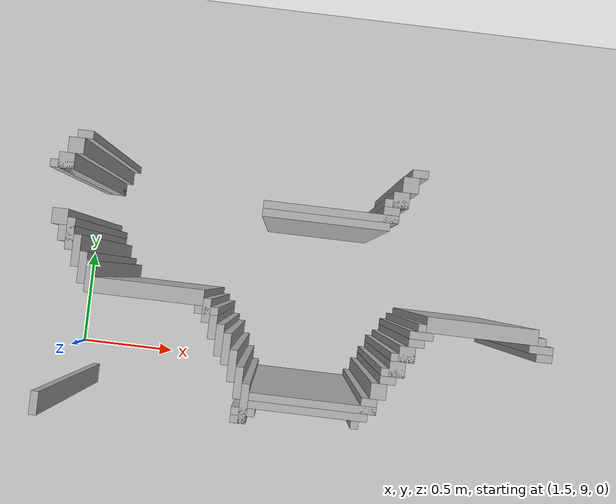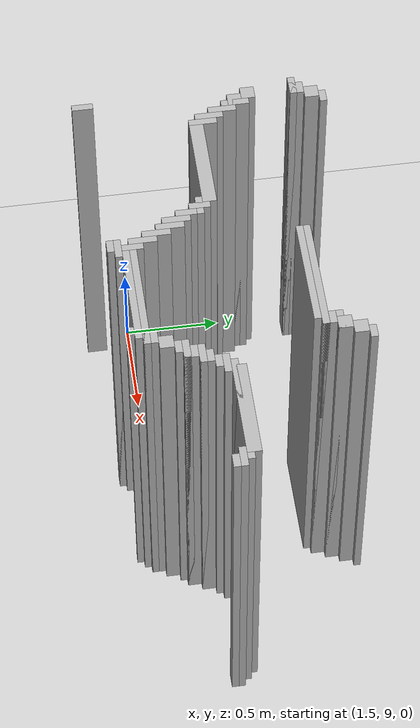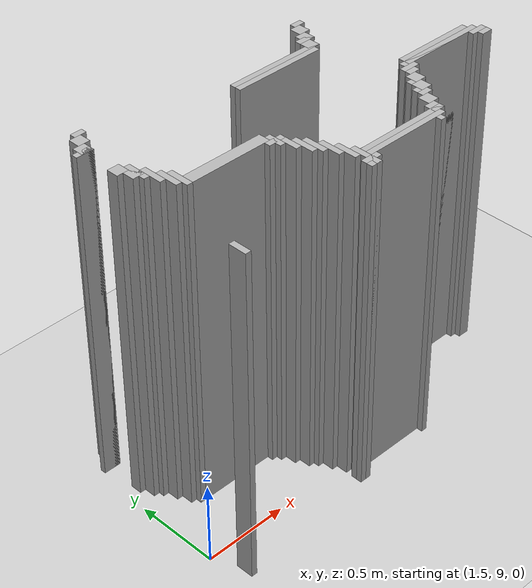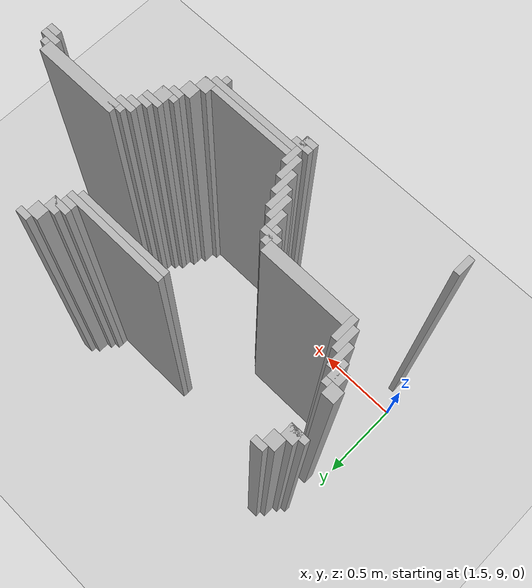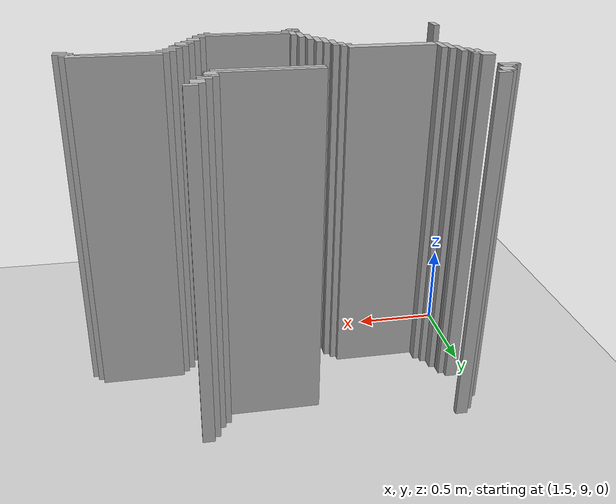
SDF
<sdf version="1.6">
 <world name="slam_world">
  <model name="ground_plane">
   <static>true</static>
   <link name="link">
    <collision name="collision">
     <geometry><plane><normal>0 0 1</normal><size>100 100</size></plane></geometry>
    </collision>
    <visual name="visual">
     <geometry><plane><normal>0 0 1</normal><size>100 100</size></plane></geometry>
     <material>
      <ambient>0.8 0.8 0.8 1</ambient>
      <diffuse>0.8 0.8 0.8 1</diffuse>
      <specular>0.8 0.8 0.8 1</specular>
     </material>
    </visual>
   </link>
  </model>
  <model name="wall_2462">
   <static>true</static>
   <pose>1.6705336426914152 10.005800464037122 1.0 0 0 0</pose>
   <link name="link">
    <collision name="collision">
     <geometry><box><size>0.06960556844547564 0.03480278422273782 2.0</size></box></geometry>
    </collision>
    <visual name="visual">
     <geometry><box><size>0.06960556844547564 0.03480278422273782 2.0</size></box></geometry>
     <material><ambient>0.5 0.5 0.5 1</ambient><diffuse>0.7 0.7 0.7 1</diffuse></material>
    </visual>
   </link>
  </model>
  <model name="wall_2463">
   <static>true</static>
   <pose>3.1322505800464038 10.005800464037122 1.0 0 0 0</pose>
   <link name="link">
    <collision name="collision">
     <geometry><box><size>0.06960556844547564 0.03480278422273782 2.0</size></box></geometry>
    </collision>
    <visual name="visual">
     <geometry><box><size>0.06960556844547564 0.03480278422273782 2.0</size></box></geometry>
     <material><ambient>0.5 0.5 0.5 1</ambient><diffuse>0.7 0.7 0.7 1</diffuse></material>
    </visual>
   </link>
  </model>
  <model name="wall_2471">
   <static>true</static>
   <pose>1.6357308584686774 9.953596287703016 1.0 0 0 0</pose>
   <link name="link">
    <collision name="collision">
     <geometry><box><size>0.06960556844547564 0.06960556844547564 2.0</size></box></geometry>
    </collision>
    <visual name="visual">
     <geometry><box><size>0.06960556844547564 0.06960556844547564 2.0</size></box></geometry>
     <material><ambient>0.5 0.5 0.5 1</ambient><diffuse>0.7 0.7 0.7 1</diffuse></material>
    </visual>
   </link>
  </model>
  <model name="wall_2472">
   <static>true</static>
   <pose>3.097447795823666 9.953596287703016 1.0 0 0 0</pose>
   <link name="link">
    <collision name="collision">
     <geometry><box><size>0.06960556844547564 0.06960556844547564 2.0</size></box></geometry>
    </collision>
    <visual name="visual">
     <geometry><box><size>0.06960556844547564 0.06960556844547564 2.0</size></box></geometry>
     <material><ambient>0.5 0.5 0.5 1</ambient><diffuse>0.7 0.7 0.7 1</diffuse></material>
    </visual>
   </link>
  </model>
  <model name="wall_2485">
   <static>true</static>
   <pose>1.6009280742459395 9.88399071925754 1.0 0 0 0</pose>
   <link name="link">
    <collision name="collision">
     <geometry><box><size>0.06960556844547564 0.06960556844547564 2.0</size></box></geometry>
    </collision>
    <visual name="visual">
     <geometry><box><size>0.06960556844547564 0.06960556844547564 2.0</size></box></geometry>
     <material><ambient>0.5 0.5 0.5 1</ambient><diffuse>0.7 0.7 0.7 1</diffuse></material>
    </visual>
   </link>
  </model>
  <model name="wall_2486">
   <static>true</static>
   <pose>3.062645011600928 9.88399071925754 1.0 0 0 0</pose>
   <link name="link">
    <collision name="collision">
     <geometry><box><size>0.06960556844547564 0.06960556844547564 2.0</size></box></geometry>
    </collision>
    <visual name="visual">
     <geometry><box><size>0.06960556844547564 0.06960556844547564 2.0</size></box></geometry>
     <material><ambient>0.5 0.5 0.5 1</ambient><diffuse>0.7 0.7 0.7 1</diffuse></material>
    </visual>
   </link>
  </model>
  <model name="wall_2499">
   <static>true</static>
   <pose>1.5835266821345706 9.86658932714617 1.0 0 0 0</pose>
   <link name="link">
    <collision name="collision">
     <geometry><box><size>0.10440835266821345 0.03480278422273782 2.0</size></box></geometry>
    </collision>
    <visual name="visual">
     <geometry><box><size>0.10440835266821345 0.03480278422273782 2.0</size></box></geometry>
     <material><ambient>0.5 0.5 0.5 1</ambient><diffuse>0.7 0.7 0.7 1</diffuse></material>
    </visual>
   </link>
  </model>
  <model name="wall_2500">
   <static>true</static>
   <pose>3.045243619489559 9.86658932714617 1.0 0 0 0</pose>
   <link name="link">
    <collision name="collision">
     <geometry><box><size>0.10440835266821345 0.03480278422273782 2.0</size></box></geometry>
    </collision>
    <visual name="visual">
     <geometry><box><size>0.10440835266821345 0.03480278422273782 2.0</size></box></geometry>
     <material><ambient>0.5 0.5 0.5 1</ambient><diffuse>0.7 0.7 0.7 1</diffuse></material>
    </visual>
   </link>
  </model>
  <model name="wall_2513">
   <static>true</static>
   <pose>3.02784222737819 9.814385150812065 1.0 0 0 0</pose>
   <link name="link">
    <collision name="collision">
     <geometry><box><size>0.06960556844547564 0.06960556844547564 2.0</size></box></geometry>
    </collision>
    <visual name="visual">
     <geometry><box><size>0.06960556844547564 0.06960556844547564 2.0</size></box></geometry>
     <material><ambient>0.5 0.5 0.5 1</ambient><diffuse>0.7 0.7 0.7 1</diffuse></material>
    </visual>
   </link>
  </model>
  <model name="wall_2522">
   <static>true</static>
   <pose>2.7668213457076565 9.796983758700696 1.0 0 0 0</pose>
   <link name="link">
    <collision name="collision">
     <geometry><box><size>0.5916473317865429 0.03480278422273782 2.0</size></box></geometry>
    </collision>
    <visual name="visual">
     <geometry><box><size>0.5916473317865429 0.03480278422273782 2.0</size></box></geometry>
     <material><ambient>0.5 0.5 0.5 1</ambient><diffuse>0.7 0.7 0.7 1</diffuse></material>
    </visual>
   </link>
  </model>
  <model name="wall_2535">
   <static>true</static>
   <pose>2.7494199535962878 9.762180974477959 1.0 0 0 0</pose>
   <link name="link">
    <collision name="collision">
     <geometry><box><size>0.5568445475638051 0.03480278422273782 2.0</size></box></geometry>
    </collision>
    <visual name="visual">
     <geometry><box><size>0.5568445475638051 0.03480278422273782 2.0</size></box></geometry>
     <material><ambient>0.5 0.5 0.5 1</ambient><diffuse>0.7 0.7 0.7 1</diffuse></material>
    </visual>
   </link>
  </model>
  <model name="wall_2559">
   <static>true</static>
   <pose>1.6009280742459395 9.640371229698376 1.0 0 0 0</pose>
   <link name="link">
    <collision name="collision">
     <geometry><box><size>0.06960556844547564 0.06960556844547564 2.0</size></box></geometry>
    </collision>
    <visual name="visual">
     <geometry><box><size>0.06960556844547564 0.06960556844547564 2.0</size></box></geometry>
     <material><ambient>0.5 0.5 0.5 1</ambient><diffuse>0.7 0.7 0.7 1</diffuse></material>
    </visual>
   </link>
  </model>
  <model name="wall_2570">
   <static>true</static>
   <pose>1.6531322505800463 9.5707656612529 1.0 0 0 0</pose>
   <link name="link">
    <collision name="collision">
     <geometry><box><size>0.03480278422273782 0.13921113689095127 2.0</size></box></geometry>
    </collision>
    <visual name="visual">
     <geometry><box><size>0.03480278422273782 0.13921113689095127 2.0</size></box></geometry>
     <material><ambient>0.5 0.5 0.5 1</ambient><diffuse>0.7 0.7 0.7 1</diffuse></material>
    </visual>
   </link>
  </model>
  <model name="wall_2581">
   <static>true</static>
   <pose>1.6357308584686774 9.5707656612529 1.0 0 0 0</pose>
   <link name="link">
    <collision name="collision">
     <geometry><box><size>0.06960556844547564 0.06960556844547564 2.0</size></box></geometry>
    </collision>
    <visual name="visual">
     <geometry><box><size>0.06960556844547564 0.06960556844547564 2.0</size></box></geometry>
     <material><ambient>0.5 0.5 0.5 1</ambient><diffuse>0.7 0.7 0.7 1</diffuse></material>
    </visual>
   </link>
  </model>
  <model name="wall_2592">
   <static>true</static>
   <pose>1.6879350348027842 9.501160092807424 1.0 0 0 0</pose>
   <link name="link">
    <collision name="collision">
     <geometry><box><size>0.03480278422273782 0.13921113689095127 2.0</size></box></geometry>
    </collision>
    <visual name="visual">
     <geometry><box><size>0.03480278422273782 0.13921113689095127 2.0</size></box></geometry>
     <material><ambient>0.5 0.5 0.5 1</ambient><diffuse>0.7 0.7 0.7 1</diffuse></material>
    </visual>
   </link>
  </model>
  <model name="wall_2607">
   <static>true</static>
   <pose>1.722737819025522 9.431554524361948 1.0 0 0 0</pose>
   <link name="link">
    <collision name="collision">
     <geometry><box><size>0.03480278422273782 0.13921113689095127 2.0</size></box></geometry>
    </collision>
    <visual name="visual">
     <geometry><box><size>0.03480278422273782 0.13921113689095127 2.0</size></box></geometry>
     <material><ambient>0.5 0.5 0.5 1</ambient><diffuse>0.7 0.7 0.7 1</diffuse></material>
    </visual>
   </link>
  </model>
  <model name="wall_2618">
   <static>true</static>
   <pose>1.75754060324826 9.39675174013921 1.0 0 0 0</pose>
   <link name="link">
    <collision name="collision">
     <geometry><box><size>0.03480278422273782 0.13921113689095127 2.0</size></box></geometry>
    </collision>
    <visual name="visual">
     <geometry><box><size>0.03480278422273782 0.13921113689095127 2.0</size></box></geometry>
     <material><ambient>0.5 0.5 0.5 1</ambient><diffuse>0.7 0.7 0.7 1</diffuse></material>
    </visual>
   </link>
  </model>
  <model name="wall_2633">
   <static>true</static>
   <pose>2.0185614849187936 9.361948955916473 1.0 0 0 0</pose>
   <link name="link">
    <collision name="collision">
     <geometry><box><size>0.4872389791183295 0.06960556844547564 2.0</size></box></geometry>
    </collision>
    <visual name="visual">
     <geometry><box><size>0.4872389791183295 0.06960556844547564 2.0</size></box></geometry>
     <material><ambient>0.5 0.5 0.5 1</ambient><diffuse>0.7 0.7 0.7 1</diffuse></material>
    </visual>
   </link>
  </model>
  <model name="wall_2634">
   <static>true</static>
   <pose>3.480278422273782 9.361948955916473 1.0 0 0 0</pose>
   <link name="link">
    <collision name="collision">
     <geometry><box><size>0.4872389791183295 0.06960556844547564 2.0</size></box></geometry>
    </collision>
    <visual name="visual">
     <geometry><box><size>0.4872389791183295 0.06960556844547564 2.0</size></box></geometry>
     <material><ambient>0.5 0.5 0.5 1</ambient><diffuse>0.7 0.7 0.7 1</diffuse></material>
    </visual>
   </link>
  </model>
  <model name="wall_2644">
   <static>true</static>
   <pose>2.279582366589327 9.309744779582367 1.0 0 0 0</pose>
   <link name="link">
    <collision name="collision">
     <geometry><box><size>0.03480278422273782 0.10440835266821345 2.0</size></box></geometry>
    </collision>
    <visual name="visual">
     <geometry><box><size>0.03480278422273782 0.10440835266821345 2.0</size></box></geometry>
     <material><ambient>0.5 0.5 0.5 1</ambient><diffuse>0.7 0.7 0.7 1</diffuse></material>
    </visual>
   </link>
  </model>
  <model name="wall_2645">
   <static>true</static>
   <pose>3.480278422273782 9.344547563805104 1.0 0 0 0</pose>
   <link name="link">
    <collision name="collision">
     <geometry><box><size>0.5568445475638051 0.03480278422273782 2.0</size></box></geometry>
    </collision>
    <visual name="visual">
     <geometry><box><size>0.5568445475638051 0.03480278422273782 2.0</size></box></geometry>
     <material><ambient>0.5 0.5 0.5 1</ambient><diffuse>0.7 0.7 0.7 1</diffuse></material>
    </visual>
   </link>
  </model>
  <model name="wall_2655">
   <static>true</static>
   <pose>2.279582366589327 9.309744779582367 1.0 0 0 0</pose>
   <link name="link">
    <collision name="collision">
     <geometry><box><size>0.10440835266821345 0.03480278422273782 2.0</size></box></geometry>
    </collision>
    <visual name="visual">
     <geometry><box><size>0.10440835266821345 0.03480278422273782 2.0</size></box></geometry>
     <material><ambient>0.5 0.5 0.5 1</ambient><diffuse>0.7 0.7 0.7 1</diffuse></material>
    </visual>
   </link>
  </model>
  <model name="wall_2656">
   <static>true</static>
   <pose>3.219257540603248 9.309744779582367 1.0 0 0 0</pose>
   <link name="link">
    <collision name="collision">
     <geometry><box><size>0.10440835266821345 0.03480278422273782 2.0</size></box></geometry>
    </collision>
    <visual name="visual">
     <geometry><box><size>0.10440835266821345 0.03480278422273782 2.0</size></box></geometry>
     <material><ambient>0.5 0.5 0.5 1</ambient><diffuse>0.7 0.7 0.7 1</diffuse></material>
    </visual>
   </link>
  </model>
  <model name="wall_2657">
   <static>true</static>
   <pose>3.741299303944315 9.309744779582367 1.0 0 0 0</pose>
   <link name="link">
    <collision name="collision">
     <geometry><box><size>0.10440835266821345 0.03480278422273782 2.0</size></box></geometry>
    </collision>
    <visual name="visual">
     <geometry><box><size>0.10440835266821345 0.03480278422273782 2.0</size></box></geometry>
     <material><ambient>0.5 0.5 0.5 1</ambient><diffuse>0.7 0.7 0.7 1</diffuse></material>
    </visual>
   </link>
  </model>
  <model name="wall_2674">
   <static>true</static>
   <pose>2.3143851508120648 9.24013921113689 1.0 0 0 0</pose>
   <link name="link">
    <collision name="collision">
     <geometry><box><size>0.03480278422273782 0.10440835266821345 2.0</size></box></geometry>
    </collision>
    <visual name="visual">
     <geometry><box><size>0.03480278422273782 0.10440835266821345 2.0</size></box></geometry>
     <material><ambient>0.5 0.5 0.5 1</ambient><diffuse>0.7 0.7 0.7 1</diffuse></material>
    </visual>
   </link>
  </model>
  <model name="wall_2675">
   <static>true</static>
   <pose>3.201856148491879 9.274941995359628 1.0 0 0 0</pose>
   <link name="link">
    <collision name="collision">
     <geometry><box><size>0.06960556844547564 0.03480278422273782 2.0</size></box></geometry>
    </collision>
    <visual name="visual">
     <geometry><box><size>0.06960556844547564 0.03480278422273782 2.0</size></box></geometry>
     <material><ambient>0.5 0.5 0.5 1</ambient><diffuse>0.7 0.7 0.7 1</diffuse></material>
    </visual>
   </link>
  </model>
  <model name="wall_2676">
   <static>true</static>
   <pose>3.7587006960556844 9.274941995359628 1.0 0 0 0</pose>
   <link name="link">
    <collision name="collision">
     <geometry><box><size>0.06960556844547564 0.03480278422273782 2.0</size></box></geometry>
    </collision>
    <visual name="visual">
     <geometry><box><size>0.06960556844547564 0.03480278422273782 2.0</size></box></geometry>
     <material><ambient>0.5 0.5 0.5 1</ambient><diffuse>0.7 0.7 0.7 1</diffuse></material>
    </visual>
   </link>
  </model>
  <model name="wall_2692">
   <static>true</static>
   <pose>2.3491879350348026 9.187935034802784 1.0 0 0 0</pose>
   <link name="link">
    <collision name="collision">
     <geometry><box><size>0.03480278422273782 0.13921113689095127 2.0</size></box></geometry>
    </collision>
    <visual name="visual">
     <geometry><box><size>0.03480278422273782 0.13921113689095127 2.0</size></box></geometry>
     <material><ambient>0.5 0.5 0.5 1</ambient><diffuse>0.7 0.7 0.7 1</diffuse></material>
    </visual>
   </link>
  </model>
  <model name="wall_2693">
   <static>true</static>
   <pose>3.167053364269141 9.222737819025522 1.0 0 0 0</pose>
   <link name="link">
    <collision name="collision">
     <geometry><box><size>0.06960556844547564 0.06960556844547564 2.0</size></box></geometry>
    </collision>
    <visual name="visual">
     <geometry><box><size>0.06960556844547564 0.06960556844547564 2.0</size></box></geometry>
     <material><ambient>0.5 0.5 0.5 1</ambient><diffuse>0.7 0.7 0.7 1</diffuse></material>
    </visual>
   </link>
  </model>
  <model name="wall_2711">
   <static>true</static>
   <pose>2.3839907192575405 9.153132250580047 1.0 0 0 0</pose>
   <link name="link">
    <collision name="collision">
     <geometry><box><size>0.03480278422273782 0.13921113689095127 2.0</size></box></geometry>
    </collision>
    <visual name="visual">
     <geometry><box><size>0.03480278422273782 0.13921113689095127 2.0</size></box></geometry>
     <material><ambient>0.5 0.5 0.5 1</ambient><diffuse>0.7 0.7 0.7 1</diffuse></material>
    </visual>
   </link>
  </model>
  <model name="wall_2712">
   <static>true</static>
   <pose>3.1496519721577725 9.205336426914153 1.0 0 0 0</pose>
   <link name="link">
    <collision name="collision">
     <geometry><box><size>0.10440835266821345 0.03480278422273782 2.0</size></box></geometry>
    </collision>
    <visual name="visual">
     <geometry><box><size>0.10440835266821345 0.03480278422273782 2.0</size></box></geometry>
     <material><ambient>0.5 0.5 0.5 1</ambient><diffuse>0.7 0.7 0.7 1</diffuse></material>
    </visual>
   </link>
  </model>
  <model name="wall_2729">
   <static>true</static>
   <pose>3.1322505800464038 9.153132250580047 1.0 0 0 0</pose>
   <link name="link">
    <collision name="collision">
     <geometry><box><size>0.06960556844547564 0.06960556844547564 2.0</size></box></geometry>
    </collision>
    <visual name="visual">
     <geometry><box><size>0.06960556844547564 0.06960556844547564 2.0</size></box></geometry>
     <material><ambient>0.5 0.5 0.5 1</ambient><diffuse>0.7 0.7 0.7 1</diffuse></material>
    </visual>
   </link>
  </model>
  <model name="wall_2745">
   <static>true</static>
   <pose>2.4187935034802783 9.08352668213457 1.0 0 0 0</pose>
   <link name="link">
    <collision name="collision">
     <geometry><box><size>0.03480278422273782 0.13921113689095127 2.0</size></box></geometry>
    </collision>
    <visual name="visual">
     <geometry><box><size>0.03480278422273782 0.13921113689095127 2.0</size></box></geometry>
     <material><ambient>0.5 0.5 0.5 1</ambient><diffuse>0.7 0.7 0.7 1</diffuse></material>
    </visual>
   </link>
  </model>
  <model name="wall_2746">
   <static>true</static>
   <pose>3.1148491879350346 9.135730858468676 1.0 0 0 0</pose>
   <link name="link">
    <collision name="collision">
     <geometry><box><size>0.10440835266821345 0.03480278422273782 2.0</size></box></geometry>
    </collision>
    <visual name="visual">
     <geometry><box><size>0.10440835266821345 0.03480278422273782 2.0</size></box></geometry>
     <material><ambient>0.5 0.5 0.5 1</ambient><diffuse>0.7 0.7 0.7 1</diffuse></material>
    </visual>
   </link>
  </model>
  <model name="wall_2763">
   <static>true</static>
   <pose>3.097447795823666 9.100928074245939 1.0 0 0 0</pose>
   <link name="link">
    <collision name="collision">
     <geometry><box><size>0.06960556844547564 0.03480278422273782 2.0</size></box></geometry>
    </collision>
    <visual name="visual">
     <geometry><box><size>0.06960556844547564 0.03480278422273782 2.0</size></box></geometry>
     <material><ambient>0.5 0.5 0.5 1</ambient><diffuse>0.7 0.7 0.7 1</diffuse></material>
    </visual>
   </link>
  </model>
  <model name="wall_2774">
   <static>true</static>
   <pose>2.453596287703016 9.013921113689095 1.0 0 0 0</pose>
   <link name="link">
    <collision name="collision">
     <geometry><box><size>0.03480278422273782 0.13921113689095127 2.0</size></box></geometry>
    </collision>
    <visual name="visual">
     <geometry><box><size>0.03480278422273782 0.13921113689095127 2.0</size></box></geometry>
     <material><ambient>0.5 0.5 0.5 1</ambient><diffuse>0.7 0.7 0.7 1</diffuse></material>
    </visual>
   </link>
  </model>
  <model name="wall_2775">
   <static>true</static>
   <pose>3.062645011600928 9.048723897911833 1.0 0 0 0</pose>
   <link name="link">
    <collision name="collision">
     <geometry><box><size>0.06960556844547564 0.06960556844547564 2.0</size></box></geometry>
    </collision>
    <visual name="visual">
     <geometry><box><size>0.06960556844547564 0.06960556844547564 2.0</size></box></geometry>
     <material><ambient>0.5 0.5 0.5 1</ambient><diffuse>0.7 0.7 0.7 1</diffuse></material>
    </visual>
   </link>
  </model>
  <model name="wall_2793">
   <static>true</static>
   <pose>2.488399071925754 8.92691415313225 1.0 0 0 0</pose>
   <link name="link">
    <collision name="collision">
     <geometry><box><size>0.03480278422273782 0.17401392111368907 2.0</size></box></geometry>
    </collision>
    <visual name="visual">
     <geometry><box><size>0.03480278422273782 0.17401392111368907 2.0</size></box></geometry>
     <material><ambient>0.5 0.5 0.5 1</ambient><diffuse>0.7 0.7 0.7 1</diffuse></material>
    </visual>
   </link>
  </model>
  <model name="wall_2794">
   <static>true</static>
   <pose>3.02784222737819 8.979118329466356 1.0 0 0 0</pose>
   <link name="link">
    <collision name="collision">
     <geometry><box><size>0.06960556844547564 0.06960556844547564 2.0</size></box></geometry>
    </collision>
    <visual name="visual">
     <geometry><box><size>0.06960556844547564 0.06960556844547564 2.0</size></box></geometry>
     <material><ambient>0.5 0.5 0.5 1</ambient><diffuse>0.7 0.7 0.7 1</diffuse></material>
    </visual>
   </link>
  </model>
  <model name="wall_2812">
   <static>true</static>
   <pose>2.784222737819025 8.961716937354987 1.0 0 0 0</pose>
   <link name="link">
    <collision name="collision">
     <geometry><box><size>0.5568445475638051 0.03480278422273782 2.0</size></box></geometry>
    </collision>
    <visual name="visual">
     <geometry><box><size>0.5568445475638051 0.03480278422273782 2.0</size></box></geometry>
     <material><ambient>0.5 0.5 0.5 1</ambient><diffuse>0.7 0.7 0.7 1</diffuse></material>
    </visual>
   </link>
  </model>
  <model name="wall_2828">
   <static>true</static>
   <pose>2.7668213457076565 8.92691415313225 1.0 0 0 0</pose>
   <link name="link">
    <collision name="collision">
     <geometry><box><size>0.5220417633410672 0.03480278422273782 2.0</size></box></geometry>
    </collision>
    <visual name="visual">
     <geometry><box><size>0.5220417633410672 0.03480278422273782 2.0</size></box></geometry>
     <material><ambient>0.5 0.5 0.5 1</ambient><diffuse>0.7 0.7 0.7 1</diffuse></material>
    </visual>
   </link>
  </model>
  <model name="wall_2840">
   <static>true</static>
   <pose>2.488399071925754 8.892111368909513 1.0 0 0 0</pose>
   <link name="link">
    <collision name="collision">
     <geometry><box><size>0.10440835266821345 0.03480278422273782 2.0</size></box></geometry>
    </collision>
    <visual name="visual">
     <geometry><box><size>0.10440835266821345 0.03480278422273782 2.0</size></box></geometry>
     <material><ambient>0.5 0.5 0.5 1</ambient><diffuse>0.7 0.7 0.7 1</diffuse></material>
    </visual>
   </link>
  </model>
  <model name="wall_2841">
   <static>true</static>
   <pose>2.975638051044083 8.892111368909513 1.0 0 0 0</pose>
   <link name="link">
    <collision name="collision">
     <geometry><box><size>0.03480278422273782 0.03480278422273782 2.0</size></box></geometry>
    </collision>
    <visual name="visual">
     <geometry><box><size>0.03480278422273782 0.03480278422273782 2.0</size></box></geometry>
     <material><ambient>0.5 0.5 0.5 1</ambient><diffuse>0.7 0.7 0.7 1</diffuse></material>
    </visual>
   </link>
  </model>
  <model name="wall_2855">
   <static>true</static>
   <pose>1.5835266821345706 8.822505800464036 1.0 0 0 0</pose>
   <link name="link">
    <collision name="collision">
     <geometry><box><size>0.03480278422273782 0.10440835266821345 2.0</size></box></geometry>
    </collision>
    <visual name="visual">
     <geometry><box><size>0.03480278422273782 0.10440835266821345 2.0</size></box></geometry>
     <material><ambient>0.5 0.5 0.5 1</ambient><diffuse>0.7 0.7 0.7 1</diffuse></material>
    </visual>
   </link>
  </model>
  <model name="wall_2856">
   <static>true</static>
   <pose>2.470997679814385 8.857308584686775 1.0 0 0 0</pose>
   <link name="link">
    <collision name="collision">
     <geometry><box><size>0.06960556844547564 0.03480278422273782 2.0</size></box></geometry>
    </collision>
    <visual name="visual">
     <geometry><box><size>0.06960556844547564 0.03480278422273782 2.0</size></box></geometry>
     <material><ambient>0.5 0.5 0.5 1</ambient><diffuse>0.7 0.7 0.7 1</diffuse></material>
    </visual>
   </link>
  </model>
 </world>
</sdf>
